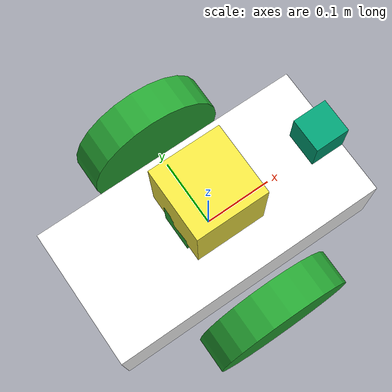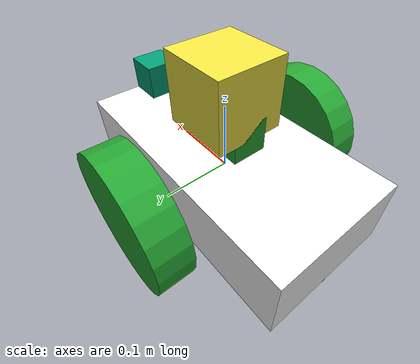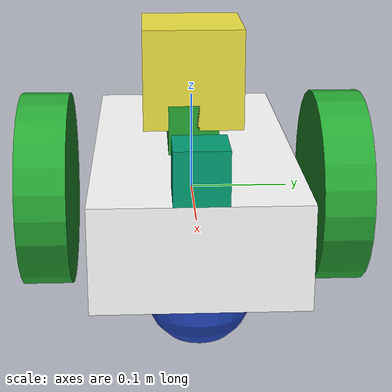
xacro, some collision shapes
<?xml version='1.0'?>

<robot name="myxbot" xmlns:xacro="http://www.ros.org/wiki/xacro">
  <xacro:include filename="$(find slam_project)/urdf/myxbot.gazebo" />
  <link name="robot_footprint"></link>

  <joint name="robot_footprint_joint" type="fixed">
    <origin xyz="0 0 0" rpy="0 0 0" />
    <parent link="robot_footprint"/>
    <child link="chassis" />
  </joint>

<joint name="camera_joint" type="fixed">
   <origin xyz="0 0 0" rpy="-1.5707 0 -1.5707"/>
   <parent link="camera_link"/>
   <child link="camera_rgbd_frame"/>
</joint>
<link name="camera_rgbd_frame"/>

  <joint type="fixed" name="camera_base_joint">
    <origin xyz="0.175 0 0" rpy="0 0 0"/>
    <child link="camera_link"/>
    <parent link="sensor_base"/>
  </joint>

 <link name='camera_link'>
    <inertial>
      <mass value="0.1"/>
      <inertia
          ixx="1e-6" ixy="0" ixz="0"
          iyy="1e-6" iyz="0"
          izz="1e-6"
      />
    </inertial>
    <collision name='camera_collision'>
      <origin xyz="0.0 0 0" rpy="0 0 0"/>
      <geometry>
        <box size="0.05 0.05 0.05"/>
      </geometry>
    </collision>
    <visual name='camera_visual'>
      <origin xyz="0.0 0 0" rpy="0 0 0"/>
      <geometry>
        <box size="0.05 0.05 0.05"/>
      </geometry>
    </visual>
  </link>

  <joint type="fixed" name="hokuyo_joint">
    <origin xyz="0.0 0 0.05" rpy="0 0 0"/>
    <child link="hokuyo"/>
    <parent link="sensor_base"/>
  </joint>

 <link name='hokuyo'>
    <inertial>
      <mass value="0.1"/>
      <inertia
          ixx="1e-6" ixy="0" ixz="0"
          iyy="1e-6" iyz="0"
          izz="1e-6"
      />
    </inertial>
    <collision name='hokuyo_collision'>
      <origin xyz="0.0 0 0" rpy="0 0 0"/>
      <geometry>
        <box size="0.1 0.1 0.1"/>
      </geometry>
    </collision>
    <visual name='hokuyo_visual'>
      <origin xyz="0.0 0 0" rpy="0 0 0"/>
      <geometry>
        <mesh filename="package://slam_project/meshes/hokuyo.dae"/>
      </geometry>
    </visual>
  </link>

  <joint type="continuous" name="left_wheel_hinge">
    <origin xyz="0.0 0.15 0" rpy="0 0 0"/>
    <child link="left_wheel"/>
    <parent link="chassis"/>
    <axis xyz="0 1 0" rpy="0 0 0"/>
    <limit effort="10000" velocity="1000"/>
    <dynamics damping="1.0" friction="1.0"/>
  </joint>

 <link name='left_wheel'>
    <inertial>
      <mass value="5.0"/>
      <origin xyz="0.0 0 0" rpy="0 1.5707 1.5707"/>
      <inertia
          ixx="0.1" ixy="0" ixz="0"
          iyy="0.1" iyz="0"
          izz="0.1"
      />
    </inertial>

    <collision name='left_wheel_collision'>
      <origin xyz="0 0 0" rpy="0 1.5707 1.5707"/>
      <geometry>
        <cylinder radius="0.1" length="0.05"/>
      </geometry>
    </collision>

    <visual name='left_wheel_visual'>
      <origin xyz="0 0 0" rpy="0 1.5707 1.5707"/>
      <geometry>
        <cylinder radius="0.1" length="0.05"/>
      </geometry>
    </visual>

  </link>

  <joint type="continuous" name="right_wheel_hinge">
    <origin xyz="0.0 -0.15 0" rpy="0 0 0"/>
    <child link="right_wheel"/>
    <parent link="chassis"/>
    <axis xyz="0 1 0" rpy="0 0 0"/>
    <limit effort="10000" velocity="1000"/>
    <dynamics damping="1.0" friction="1.0"/>
  </joint>

 <link name='right_wheel'>
    <inertial>
      <mass value="5.0"/>
      <origin xyz="0.0 0 0" rpy="0 1.5707 1.5707"/>
      <inertia
          ixx="0.1" ixy="0" ixz="0"
          iyy="0.1" iyz="0"
          izz="0.1"
      />
    </inertial>

    <collision name='right_wheel_collision'>
      <origin xyz="0 0 0" rpy="0 1.5707 1.5707"/>
      <geometry>
        <cylinder radius="0.1" length="0.05"/>
      </geometry>
    </collision>

    <visual name='right_wheel_visual'>
      <origin xyz="0 0 0" rpy="0 1.5707 1.5707"/>
      <geometry>
        <cylinder radius="0.1" length="0.05"/>
      </geometry>
    </visual>

  </link>

  <joint type="fixed" name="sensor_base_joint">
    <origin xyz="0.0 0.0 0.075" rpy="0 0 0"/>
    <child link="sensor_base"/>
    <parent link="chassis"/>
  </joint>
  <link name='sensor_base'>
    <pose>0 0 0.1 0 0 0</pose>
    <inertial>
      <mass value="1.40625"/>
      <origin xyz="0 0 0" rpy="0 0 0"/>
      <inertia
          ixx="0.1" ixy="0" ixz="0"
          iyy="0.1" iyz="0"
          izz="0.1"
      />
    </inertial>
    <collision name='sensor_base_collision'>
      <origin xyz="0 0 0" rpy=" 0 0 0"/>
      <geometry>
        <box size=".1 .05 .05"/>
      </geometry>
    </collision>

    <visual name='sensor_base_visual'>
      <origin xyz="0 0 0" rpy=" 0 0 0"/>
      <geometry>
        <box size=".1 .05 .05"/>
      </geometry>
    </visual>
  </link>

  <link name='chassis'>
    <pose>0 0 0.1 0 0 0</pose>
    <inertial>
      <mass value="15.0"/>
      <origin xyz="0.0 0 0" rpy=" 0 0 0"/>
      <inertia
          ixx="0.1" ixy="0" ixz="0"
          iyy="0.1" iyz="0"
          izz="0.1"
      />
    </inertial>

    <collision name='collision'>
      <origin xyz="0 0 0" rpy=" 0 0 0"/>
      <geometry>
        <box size=".4 .2 .1"/>
      </geometry>
    </collision>

    <visual name='chassis_visual'>
      <origin xyz="0 0 0" rpy=" 0 0 0"/>
      <geometry>
        <box size=".4 .2 .1"/>
      </geometry>
      <material name="black">
          <color rgba="1 1 1 1"/>
      </material>
    </visual>

    <collision name='back_caster_collision'>
      <origin xyz="-0.15 0 -0.05" rpy=" 0 0 0"/>
      <geometry>
        <sphere radius="0.0499"/>
      </geometry>
    </collision>

    <visual name='back_caster_visual'>
      <origin xyz="-0.15 0 -0.05" rpy=" 0 0 0"/>
      <geometry>
        <sphere radius="0.05"/>
      </geometry>
    </visual>

    <collision name='front_caster_collision'>
      <material>Gazebo/Red</material>
      <origin xyz="0.15 0 -0.05" rpy=" 0 0 0"/>
      <geometry>
        <sphere radius="0.0499"/>
      </geometry>
    </collision>

    <visual name='front_caster_visual'>
      <origin xyz="0.15 0 -0.05" rpy=" 0 0 0"/>
      <geometry>
        <sphere radius="0.05"/>
      </geometry>
    </visual>

  </link>

</robot>
